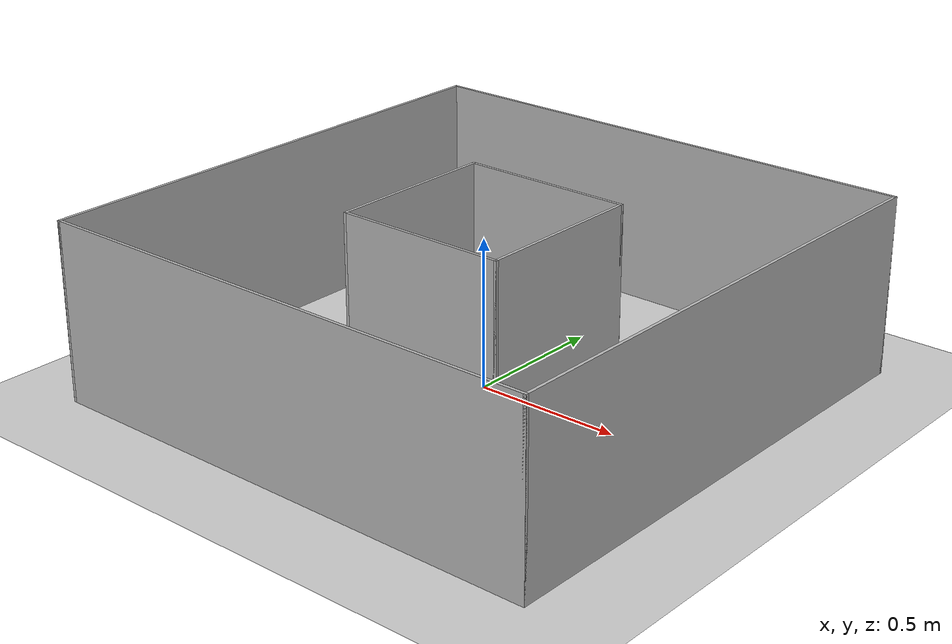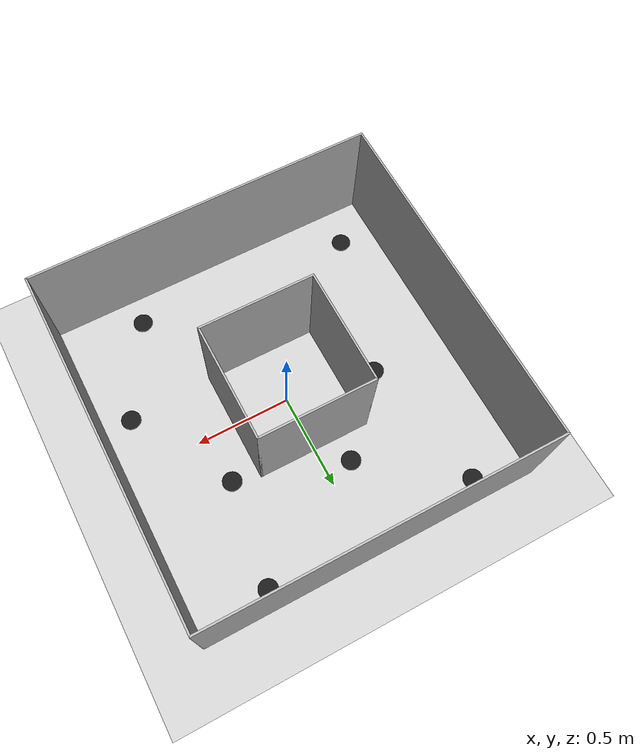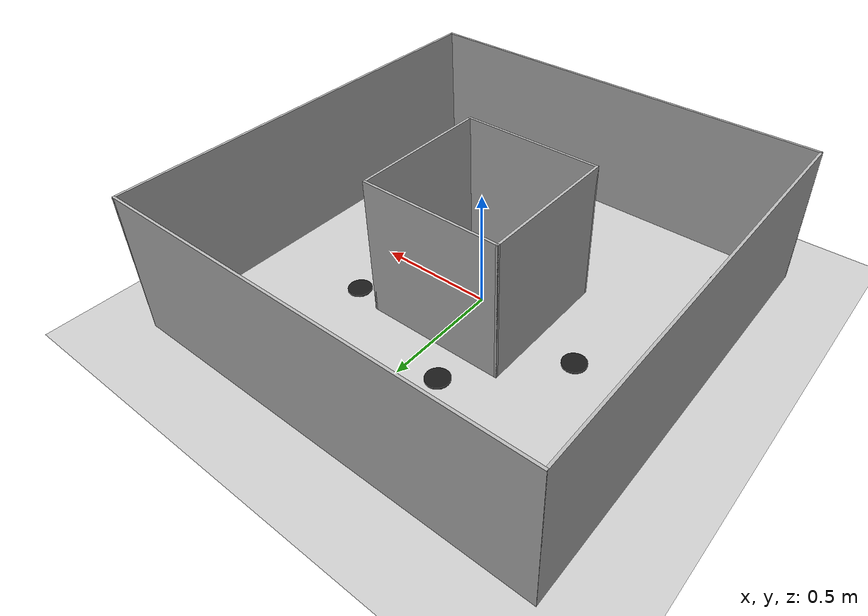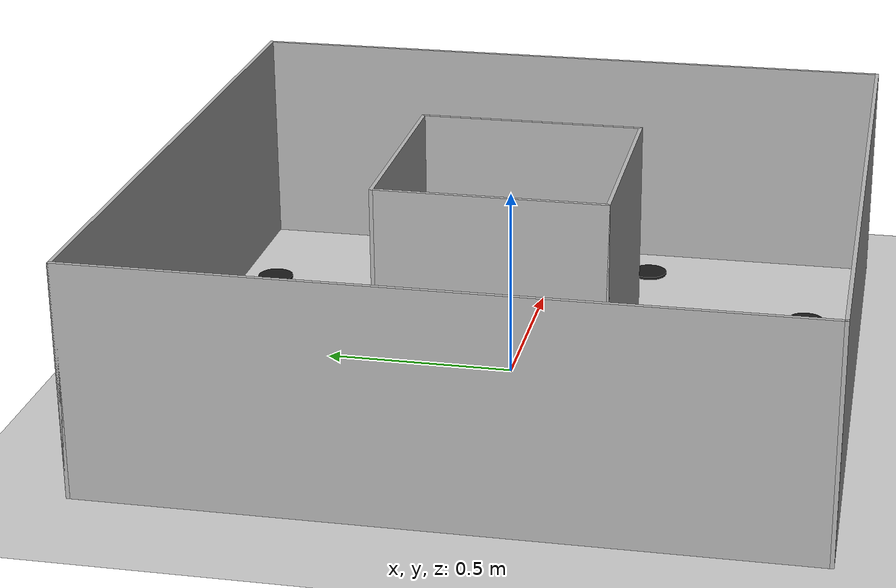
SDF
<sdf version="1.7">
 <world name="maze_world">
  <light name="sun" type="directional">
   <pose>0 0 10 0 -0 0</pose>
   <diffuse>0.8 0.8 0.8 1</diffuse>
   <specular>0.2 0.2 0.2 1</specular>
   <attenuation>
    <range>1000</range>
    <constant>0.9</constant>
    <linear>0.01</linear>
    <quadratic>0.001</quadratic>
   </attenuation>
   <direction>-0.5 0.1 -0.9</direction>
   <spot><inner_angle>0</inner_angle><outer_angle>0</outer_angle><falloff>0</falloff></spot>
  </light>
  <model name="outer_walls">
   <static>1</static>
   <link name="top_wall">
    <pose>0 0.895 0.3 0 -0 0</pose>
    <visual name="visual"><geometry><box><size>1.8 0.01 0.6</size></box></geometry></visual>
    <collision name="collision"><geometry><box><size>1.8 0.01 0.6</size></box></geometry></collision>
   </link>
   <link name="bottom_wall">
    <pose>0 -0.895 0.3 0 -0 0</pose>
    <visual name="visual"><geometry><box><size>1.8 0.01 0.6</size></box></geometry></visual>
    <collision name="collision"><geometry><box><size>1.8 0.01 0.6</size></box></geometry></collision>
   </link>
   <link name="left_wall">
    <pose>-0.895 0 0.3 0 -0 0</pose>
    <visual name="visual"><geometry><box><size>0.01 1.8 0.6</size></box></geometry></visual>
    <collision name="collision"><geometry><box><size>0.01 1.8 0.6</size></box></geometry></collision>
   </link>
   <link name="right_wall">
    <pose>0.895 0 0.3 0 -0 0</pose>
    <visual name="visual"><geometry><box><size>0.01 1.8 0.6</size></box></geometry></visual>
    <collision name="collision"><geometry><box><size>0.01 1.8 0.6</size></box></geometry></collision>
   </link>
  </model>
  <model name="inner_walls">
   <static>1</static>
   <link name="inner_top_wall">
    <pose>0 0.295 0.3 0 -0 0</pose>
    <visual name="visual"><geometry><box><size>0.6 0.01 0.6</size></box></geometry></visual>
    <collision name="collision"><geometry><box><size>0.6 0.01 0.6</size></box></geometry></collision>
   </link>
   <link name="inner_bottom_wall">
    <pose>0 -0.295 0.3 0 -0 0</pose>
    <visual name="visual"><geometry><box><size>0.6 0.01 0.6</size></box></geometry></visual>
    <collision name="collision"><geometry><box><size>0.6 0.01 0.6</size></box></geometry></collision>
   </link>
   <link name="inner_left_wall">
    <pose>-0.295 0 0.3 0 -0 0</pose>
    <visual name="visual"><geometry><box><size>0.01 0.6 0.6</size></box></geometry></visual>
    <collision name="collision"><geometry><box><size>0.01 0.6 0.6</size></box></geometry></collision>
   </link>
   <link name="inner_right_wall">
    <pose>0.295 0 0.3 0 -0 0</pose>
    <visual name="visual"><geometry><box><size>0.01 0.6 0.6</size></box></geometry></visual>
    <collision name="collision"><geometry><box><size>0.01 0.6 0.6</size></box></geometry></collision>
   </link>
  </model>
  <gravity>0 0 -9.8</gravity>
  <magnetic_field>6e-06 2.3e-05 -4.2e-05</magnetic_field>
  <atmosphere type="adiabatic"/>
  <physics type="ode">
   <max_step_size>0.001</max_step_size>
   <real_time_factor>1</real_time_factor>
   <real_time_update_rate>1000</real_time_update_rate>
  </physics>
  <scene><ambient>0.4 0.4 0.4 1</ambient><background>0.7 0.7 0.7 1</background><shadows>1</shadows></scene>
  <audio><device>default</device></audio>
  <spherical_coordinates>
   <surface_model>EARTH_WGS84</surface_model>
   <latitude_deg>0</latitude_deg>
   <longitude_deg>0</longitude_deg>
   <elevation>0</elevation>
   <heading_deg>0</heading_deg>
  </spherical_coordinates>
  <model name="pothole_clone">
   <static>1</static>
   <link name="pothole_link">
    <collision name="collision">
     <geometry><cylinder><radius>0.05</radius><length>0.01</length></cylinder></geometry>
    </collision>
    <visual name="visual">
     <geometry><cylinder><radius>0.05</radius><length>0.01</length></cylinder></geometry>
     <material><ambient>0.1 0.1 0.1 1</ambient></material>
    </visual>
   </link>
   <pose>-0.707924 -0.694809 0 0 -0 0</pose>
  </model>
  <model name="pothole_clone_0">
   <static>1</static>
   <link name="pothole_link">
    <collision name="collision">
     <geometry><cylinder><radius>0.05</radius><length>0.01</length></cylinder></geometry>
    </collision>
    <visual name="visual">
     <geometry><cylinder><radius>0.05</radius><length>0.01</length></cylinder></geometry>
     <material><ambient>0.1 0.1 0.1 1</ambient></material>
    </visual>
   </link>
   <pose>-0.06688 -0.435505 0 0 -0 0</pose>
  </model>
  <model name="pothole_clone_1">
   <static>1</static>
   <link name="pothole_link">
    <collision name="collision">
     <geometry><cylinder><radius>0.05</radius><length>0.01</length></cylinder></geometry>
    </collision>
    <visual name="visual">
     <geometry><cylinder><radius>0.05</radius><length>0.01</length></cylinder></geometry>
     <material><ambient>0.1 0.1 0.1 1</ambient></material>
    </visual>
   </link>
   <pose>0.47228 -0.749579 0 0 -0 0</pose>
  </model>
  <model name="pothole_clone_2">
   <static>1</static>
   <link name="pothole_link">
    <collision name="collision">
     <geometry><cylinder><radius>0.05</radius><length>0.01</length></cylinder></geometry>
    </collision>
    <visual name="visual">
     <geometry><cylinder><radius>0.05</radius><length>0.01</length></cylinder></geometry>
     <material><ambient>0.1 0.1 0.1 1</ambient></material>
    </visual>
   </link>
   <pose>0.748747 -0.273547 0 0 -0 0</pose>
  </model>
  <model name="pothole_clone_3">
   <static>1</static>
   <link name="pothole_link">
    <collision name="collision">
     <geometry><cylinder><radius>0.05</radius><length>0.01</length></cylinder></geometry>
    </collision>
    <visual name="visual">
     <geometry><cylinder><radius>0.05</radius><length>0.01</length></cylinder></geometry>
     <material><ambient>0.1 0.1 0.1 1</ambient></material>
    </visual>
   </link>
   <pose>0.43627 0.252679 0 0 -0 0</pose>
  </model>
  <model name="pothole_clone_4">
   <static>1</static>
   <link name="pothole_link">
    <collision name="collision">
     <geometry><cylinder><radius>0.05</radius><length>0.01</length></cylinder></geometry>
    </collision>
    <visual name="visual">
     <geometry><cylinder><radius>0.05</radius><length>0.01</length></cylinder></geometry>
     <material><ambient>0.1 0.1 0.1 1</ambient></material>
    </visual>
   </link>
   <pose>0.516521 0.798036 0 0 -0 0</pose>
  </model>
  <model name="pothole_clone_5">
   <static>1</static>
   <link name="pothole_link">
    <collision name="collision">
     <geometry><cylinder><radius>0.05</radius><length>0.01</length></cylinder></geometry>
    </collision>
    <visual name="visual">
     <geometry><cylinder><radius>0.05</radius><length>0.01</length></cylinder></geometry>
     <material><ambient>0.1 0.1 0.1 1</ambient></material>
    </visual>
   </link>
   <pose>-0.136709 0.431453 0 0 -0 0</pose>
  </model>
  <model name="pothole_clone_6">
   <static>1</static>
   <link name="pothole_link">
    <collision name="collision">
     <geometry><cylinder><radius>0.05</radius><length>0.01</length></cylinder></geometry>
    </collision>
    <visual name="visual">
     <geometry><cylinder><radius>0.05</radius><length>0.01</length></cylinder></geometry>
     <material><ambient>0.1 0.1 0.1 1</ambient></material>
    </visual>
   </link>
   <pose>-0.622491 0.792888 0 0 -0 0</pose>
  </model>
  <model name="pothole_clone_7">
   <static>1</static>
   <link name="pothole_link">
    <collision name="collision">
     <geometry><cylinder><radius>0.05</radius><length>0.01</length></cylinder></geometry>
    </collision>
    <visual name="visual">
     <geometry><cylinder><radius>0.05</radius><length>0.01</length></cylinder></geometry>
     <material><ambient>0.1 0.1 0.1 1</ambient></material>
    </visual>
   </link>
   <pose>-0.48114 0.064416 0 0 -0 0</pose>
  </model>
  <model name="ground_plane">
   <static>1</static>
   <link name="link">
    <collision name="collision">
     <geometry><plane><normal>0 0 1</normal><size>100 100</size></plane></geometry>
     <surface>
      <contact><collide_bitmask>65535</collide_bitmask></contact>
      <friction><ode><mu>100</mu><mu2>50</mu2></ode></friction>
     </surface>
    </collision>
    <visual name="visual">
     <cast_shadows>0</cast_shadows>
     <geometry><plane><normal>0 0 1</normal><size>100 100</size></plane></geometry>
     <material>
      <script><uri>file://media/materials/scripts/gazebo.material</uri><name>Gazebo/Grey</name></script>
     </material>
    </visual>
   </link>
   <pose>-0.496527 0.042615 0 0 -0 0</pose>
  </model>
 </world>
</sdf>
